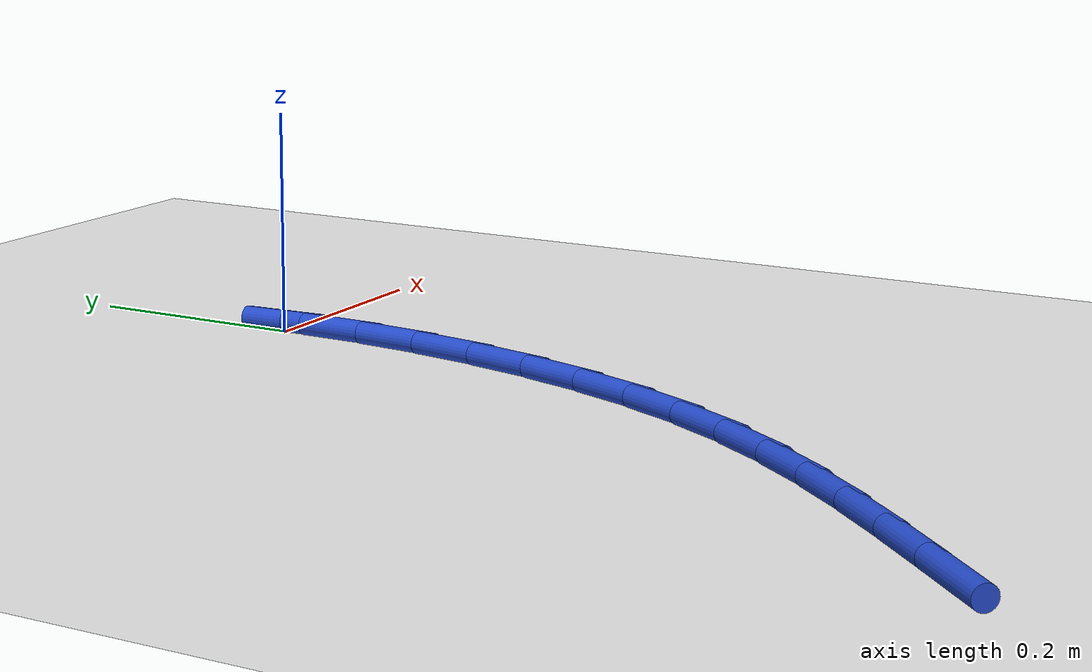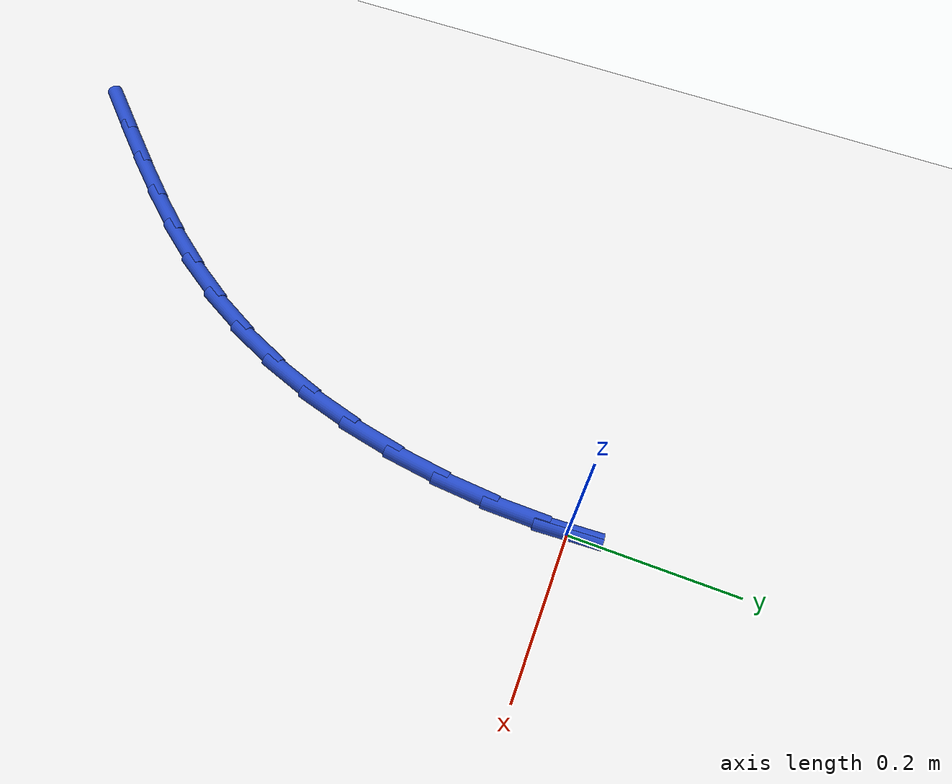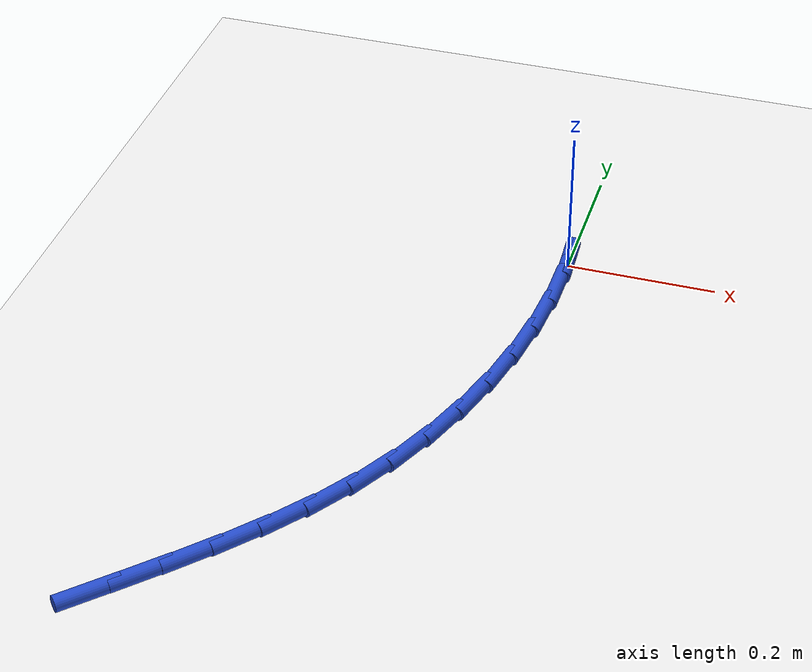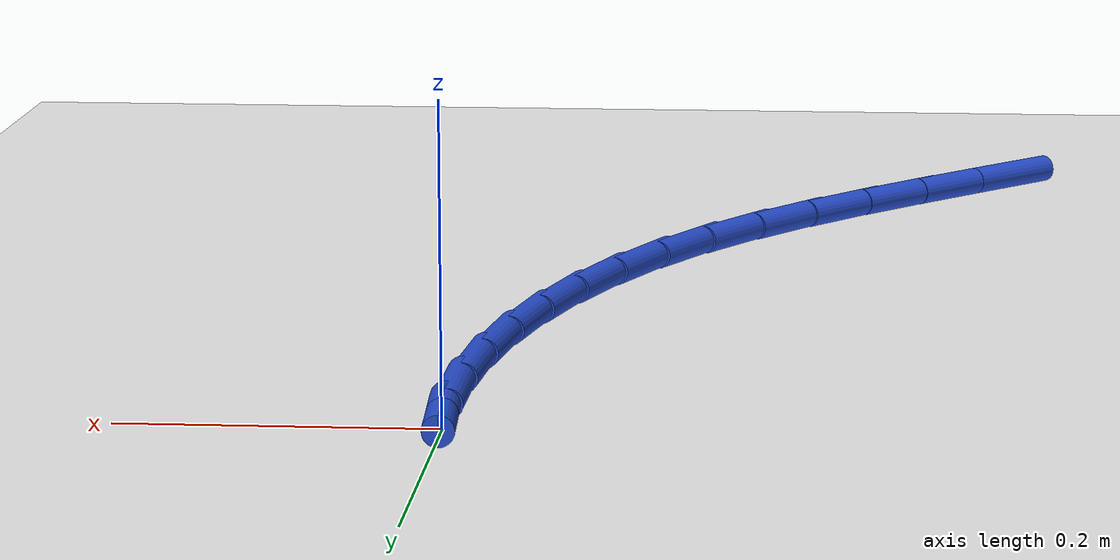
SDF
<sdf version="1.6">
 <world name="default">
  <model name="ground_plane">
   <static>1</static>
   <link name="link">
    <collision name="collision">
     <geometry><plane><normal>0 0 1</normal><size>100 100</size></plane></geometry>
     <surface><friction><ode><mu>100</mu><mu2>50</mu2></ode></friction></surface>
    </collision>
    <visual name="visual">
     <cast_shadows>0</cast_shadows>
     <geometry><plane><normal>0 0 1</normal><size>100 100</size></plane></geometry>
     <material>
      <script><uri>file://media/materials/scripts/gazebo.material</uri><name>Gazebo/WhiteGlow</name></script>
     </material>
    </visual>
   </link>
  </model>
  <model name="line">
   <link name="link_0">
    <pose>-4.85722573273506e-17 -2.7755575615628914e-17 0.01 0 1.57 -1.5149139239258251</pose>
    <collision name="collision">
     <geometry><cylinder><radius>0.01</radius><length>0.08</length></cylinder></geometry>
    </collision>
    <visual name="visual">
     <material>
      <script><name>Gazebo/Blue</name><uri>file://media/materials/scripts/gazebo.material</uri></script>
     </material>
     <geometry><cylinder><radius>0.01</radius><length>0.08</length></cylinder></geometry>
    </visual>
   </link>
   <link name="link_116">
    <pose>-0.3632557778041043 -0.7537292883761281 0.01 0 1.57 0.7800328418148439</pose>
    <collision name="collision">
     <geometry><cylinder><radius>0.01</radius><length>0.08</length></cylinder></geometry>
    </collision>
    <visual name="visual">
     <material>
      <script><name>Gazebo/Blue</name><uri>file://media/materials/scripts/gazebo.material</uri></script>
     </material>
     <geometry><cylinder><radius>0.01</radius><length>0.08</length></cylinder></geometry>
    </visual>
   </link>
   <link name="link_117">
    <pose>-0.3185928304128113 -0.709543050013058 0.01 0 1.57 0.7894824125695256</pose>
    <collision name="collision">
     <geometry><cylinder><radius>0.01</radius><length>0.08</length></cylinder></geometry>
    </collision>
    <visual name="visual">
     <material>
      <script><name>Gazebo/Blue</name><uri>file://media/materials/scripts/gazebo.material</uri></script>
     </material>
     <geometry><cylinder><radius>0.01</radius><length>0.08</length></cylinder></geometry>
    </visual>
   </link>
   <link name="link_118">
    <pose>-0.2748979997133331 -0.6654898324272556 0.01 0 1.57 0.813971354079842</pose>
    <collision name="collision">
     <geometry><cylinder><radius>0.01</radius><length>0.08</length></cylinder></geometry>
    </collision>
    <visual name="visual">
     <material>
      <script><name>Gazebo/Blue</name><uri>file://media/materials/scripts/gazebo.material</uri></script>
     </material>
     <geometry><cylinder><radius>0.01</radius><length>0.08</length></cylinder></geometry>
    </visual>
   </link>
   <link name="link_119">
    <pose>-0.23277945656782523 -0.6208928762669629 0.01 0 1.57 0.8539003022911693</pose>
    <collision name="collision">
     <geometry><cylinder><radius>0.01</radius><length>0.08</length></cylinder></geometry>
    </collision>
    <visual name="visual">
     <material>
      <script><name>Gazebo/Blue</name><uri>file://media/materials/scripts/gazebo.material</uri></script>
     </material>
     <geometry><cylinder><radius>0.01</radius><length>0.08</length></cylinder></geometry>
    </visual>
   </link>
   <link name="link_120">
    <pose>-0.1928453718384406 -0.5750754221804193 0.01 0 1.57 0.9093613525435502</pose>
    <collision name="collision">
     <geometry><cylinder><radius>0.01</radius><length>0.08</length></cylinder></geometry>
    </collision>
    <visual name="visual">
     <material>
      <script><name>Gazebo/Blue</name><uri>file://media/materials/scripts/gazebo.material</uri></script>
     </material>
     <geometry><cylinder><radius>0.01</radius><length>0.08</length></cylinder></geometry>
    </visual>
   </link>
   <link name="link_121">
    <pose>-0.15570391638733347 -0.5273607108158662 0.01 0 1.57 0.9798419693345596</pose>
    <collision name="collision">
     <geometry><cylinder><radius>0.01</radius><length>0.08</length></cylinder></geometry>
    </collision>
    <visual name="visual">
     <material>
      <script><name>Gazebo/Blue</name><uri>file://media/materials/scripts/gazebo.material</uri></script>
     </material>
     <geometry><cylinder><radius>0.01</radius><length>0.08</length></cylinder></geometry>
    </visual>
   </link>
   <link name="link_122">
    <pose>-0.12196326107665752 -0.47707198282154356 0.01 0 1.57 1.0624835563883699</pose>
    <collision name="collision">
     <geometry><cylinder><radius>0.01</radius><length>0.08</length></cylinder></geometry>
    </collision>
    <visual name="visual">
     <material>
      <script><name>Gazebo/Blue</name><uri>file://media/materials/scripts/gazebo.material</uri></script>
     </material>
     <geometry><cylinder><radius>0.01</radius><length>0.08</length></cylinder></geometry>
    </visual>
   </link>
   <link name="link_123">
    <pose>-0.09218646307686809 -0.4236267176353704 0.01 0 1.57 1.1443272805559552</pose>
    <collision name="collision">
     <geometry><cylinder><radius>0.01</radius><length>0.08</length></cylinder></geometry>
    </collision>
    <visual name="visual">
     <material>
      <script><name>Gazebo/Blue</name><uri>file://media/materials/scripts/gazebo.material</uri></script>
     </material>
     <geometry><cylinder><radius>0.01</radius><length>0.08</length></cylinder></geometry>
    </visual>
   </link>
   <link name="link_124">
    <pose>-0.06656099321540031 -0.36722696365989643 0.01 0 1.57 1.2204519431092613</pose>
    <collision name="collision">
     <geometry><cylinder><radius>0.01</radius><length>0.08</length></cylinder></geometry>
    </collision>
    <visual name="visual">
     <material>
      <script><name>Gazebo/Blue</name><uri>file://media/materials/scripts/gazebo.material</uri></script>
     </material>
     <geometry><cylinder><radius>0.01</radius><length>0.08</length></cylinder></geometry>
    </visual>
   </link>
   <link name="link_125">
    <pose>-0.045087939782168004 -0.30846410708165406 0.01 0 1.57 1.2920980585726731</pose>
    <collision name="collision">
     <geometry><cylinder><radius>0.01</radius><length>0.08</length></cylinder></geometry>
    </collision>
    <visual name="visual">
     <material>
      <script><name>Gazebo/Blue</name><uri>file://media/materials/scripts/gazebo.material</uri></script>
     </material>
     <geometry><cylinder><radius>0.01</radius><length>0.08</length></cylinder></geometry>
    </visual>
   </link>
   <link name="link_126">
    <pose>-0.02776704794746982 -0.24793233975353052 0.01 0 1.57 1.3605372524222406</pose>
    <collision name="collision">
     <geometry><cylinder><radius>0.01</radius><length>0.08</length></cylinder></geometry>
    </collision>
    <visual name="visual">
     <material>
      <script><name>Gazebo/Blue</name><uri>file://media/materials/scripts/gazebo.material</uri></script>
     </material>
     <geometry><cylinder><radius>0.01</radius><length>0.08</length></cylinder></geometry>
    </visual>
   </link>
   <link name="link_127">
    <pose>-0.014598062881605195 -0.18622585352841575 0.01 0 1.57 1.4270245124199044</pose>
    <collision name="collision">
     <geometry><cylinder><radius>0.01</radius><length>0.08</length></cylinder></geometry>
    </collision>
    <visual name="visual">
     <material>
      <script><name>Gazebo/Blue</name><uri>file://media/materials/scripts/gazebo.material</uri></script>
     </material>
     <geometry><cylinder><radius>0.01</radius><length>0.08</length></cylinder></geometry>
    </visual>
   </link>
   <link name="link_128">
    <pose>-0.005580729754872756 -0.12393884025919694 0.01 0 1.57 1.4928164348240056</pose>
    <collision name="collision">
     <geometry><cylinder><radius>0.01</radius><length>0.08</length></cylinder></geometry>
    </collision>
    <visual name="visual">
     <material>
      <script><name>Gazebo/Blue</name><uri>file://media/materials/scripts/gazebo.material</uri></script>
     </material>
     <geometry><cylinder><radius>0.01</radius><length>0.08</length></cylinder></geometry>
    </visual>
   </link>
   <link name="link_129">
    <pose>-0.0007147937375713911 -0.061665491798762274 0.01 0 1.57 1.5592053752667148</pose>
    <collision name="collision">
     <geometry><cylinder><radius>0.01</radius><length>0.08</length></cylinder></geometry>
    </collision>
    <visual name="visual">
     <material>
      <script><name>Gazebo/Blue</name><uri>file://media/materials/scripts/gazebo.material</uri></script>
     </material>
     <geometry><cylinder><radius>0.01</radius><length>0.08</length></cylinder></geometry>
    </visual>
   </link>
   <link name="link_130">
    <pose>-2.7755575615628914e-17 1.8041124150158794e-16 0.01 0 1.57 -1.5140281103967193</pose>
    <collision name="collision">
     <geometry><cylinder><radius>0.01</radius><length>0.08</length></cylinder></geometry>
    </collision>
    <visual name="visual">
     <material>
      <script><name>Gazebo/Blue</name><uri>file://media/materials/scripts/gazebo.material</uri></script>
     </material>
     <geometry><cylinder><radius>0.01</radius><length>0.08</length></cylinder></geometry>
    </visual>
   </link>
  </model>
 </world>
</sdf>
